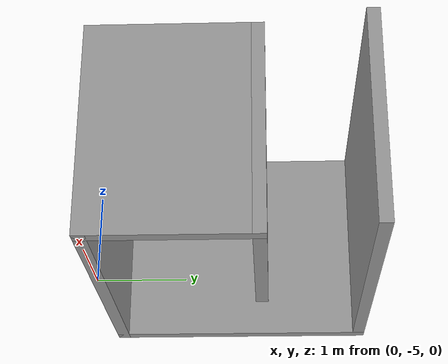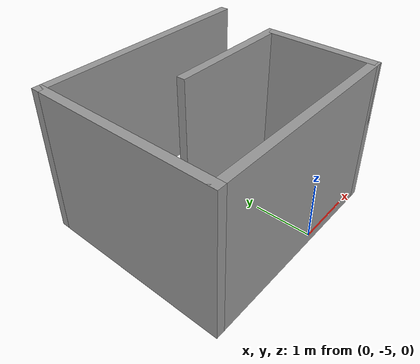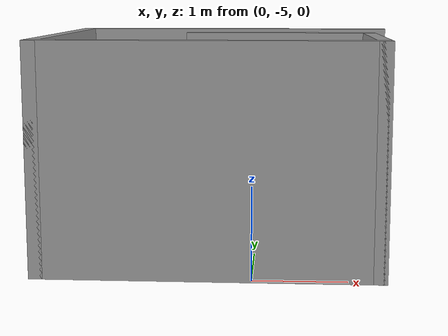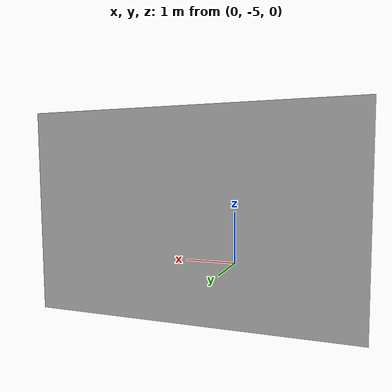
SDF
<?xml version='1.0'?>
<sdf version='1.6'>
  <model name='room'>
    <pose frame=''>-0.345 -3.45 0 0 -0 0</pose>
    <link name='Wall_0'>
      <collision name='Wall_0_Collision'>
        <geometry>
          <box>
            <size>4 0.15 2.5</size>
          </box>
        </geometry>
        <pose frame=''>0 0 1.25 0 -0 0</pose>
      </collision>
      <visual name='Wall_0_Visual'>
        <pose frame=''>0 0 1.25 0 -0 0</pose>
        <geometry>
          <box>
            <size>4 0.15 2.5</size>
          </box>
        </geometry>
        <material>
          <script>
            <uri>file://media/materials/scripts/gazebo.material</uri>
            <name>Gazebo/Grey</name>
          </script>
          <ambient>1 1 1 1</ambient>
        </material>
      </visual>
      <pose frame=''>0 1.55 0 0 -0 3.14159</pose>
    </link>
    <link name='Wall_1'>
      <collision name='Wall_1_Collision'>
        <geometry>
          <box>
            <size>3.25 0.15 2.5</size>
          </box>
        </geometry>
        <pose frame=''>0 0 1.25 0 -0 0</pose>
      </collision>
      <visual name='Wall_1_Visual'>
        <pose frame=''>0 0 1.25 0 -0 0</pose>
        <geometry>
          <box>
            <size>3.25 0.15 2.5</size>
          </box>
        </geometry>
        <material>
          <script>
            <uri>file://media/materials/scripts/gazebo.material</uri>
            <name>Gazebo/Grey</name>
          </script>
          <ambient>1 1 1 1</ambient>
        </material>
      </visual>
      <pose frame=''>-1.925 0 0 0 0 -1.5708</pose>
    </link>
    <link name='Wall_2'>
      <collision name='Wall_2_Collision'>
        <geometry>
          <box>
            <size>3.75 0.15 2.5</size>
          </box>
        </geometry>
        <pose frame=''>0 0 1.25 0 -0 0</pose>
      </collision>
      <visual name='Wall_2_Visual'>
        <pose frame=''>0 0 1.25 0 -0 0</pose>
        <geometry>
          <box>
            <size>3.75 0.15 2.5</size>
          </box>
        </geometry>
        <material>
          <script>
            <uri>file://media/materials/scripts/gazebo.material</uri>
            <name>Gazebo/Grey</name>
          </script>
          <ambient>1 1 1 1</ambient>
        </material>
      </visual>
      <pose frame=''>-0.125 -1.55 0 0 -0 0</pose>
    </link>
    <link name='Wall_3'>
      <collision name='Wall_3_Collision'>
        <geometry>
          <box>
            <size>2 0.15 2.5</size>
          </box>
        </geometry>
        <pose frame=''>0 0 1.25 0 -0 0</pose>
      </collision>
      <visual name='Wall_3_Visual'>
        <pose frame=''>0 0 1.25 0 -0 0</pose>
        <geometry>
          <box>
            <size>2 0.15 2.5</size>
          </box>
        </geometry>
        <material>
          <script>
            <uri>file://media/materials/scripts/gazebo.material</uri>
            <name>Gazebo/Grey</name>
          </script>
          <ambient>1 1 1 1</ambient>
        </material>
      </visual>
      <pose frame=''>1.675 -0.625 0 0 -0 1.5708</pose>
    </link>
    <link name='Wall_4'>
      <collision name='Wall_4_Collision'>
        <geometry>
          <box>
            <size>2.25 0.15 2.5</size>
          </box>
        </geometry>
        <pose frame=''>0 0 1.25 0 -0 0</pose>
      </collision>
      <visual name='Wall_4_Visual'>
        <pose frame=''>0 0 1.25 0 -0 0</pose>
        <geometry>
          <box>
            <size>2.25 0.15 2.5</size>
          </box>
        </geometry>
        <material>
          <script>
            <uri>file://media/materials/scripts/gazebo.material</uri>
            <name>Gazebo/Grey</name>
          </script>
          <ambient>1 1 1 1</ambient>
        </material>
      </visual>
      <pose frame=''>0.625 0.3 0 0 -0 3.14159</pose>
    </link>
    <static>1</static>
  </model>
</sdf>
